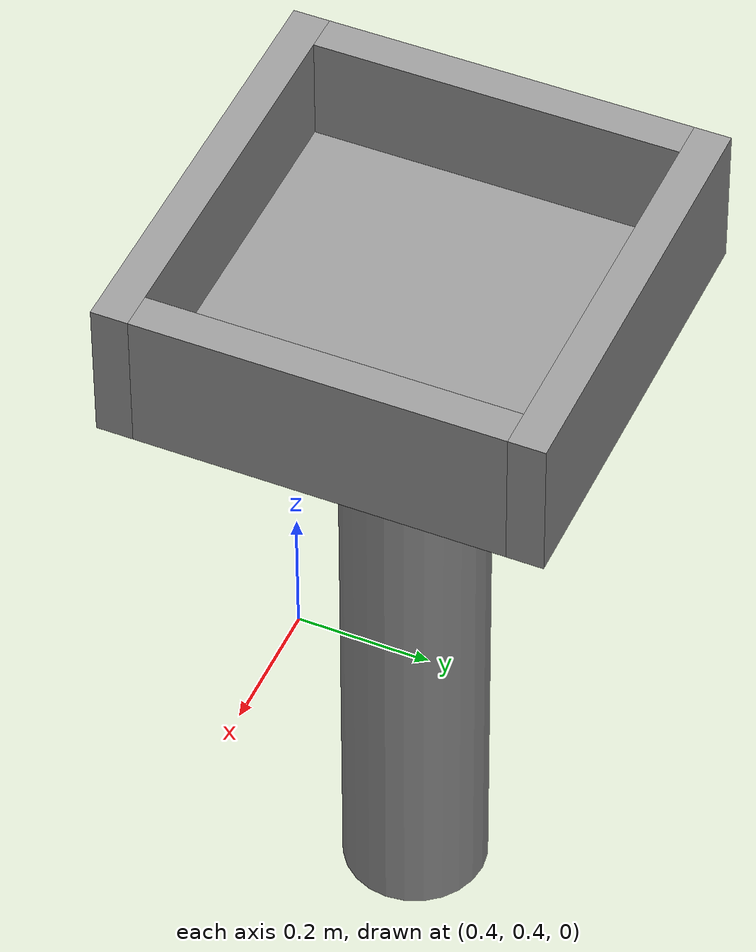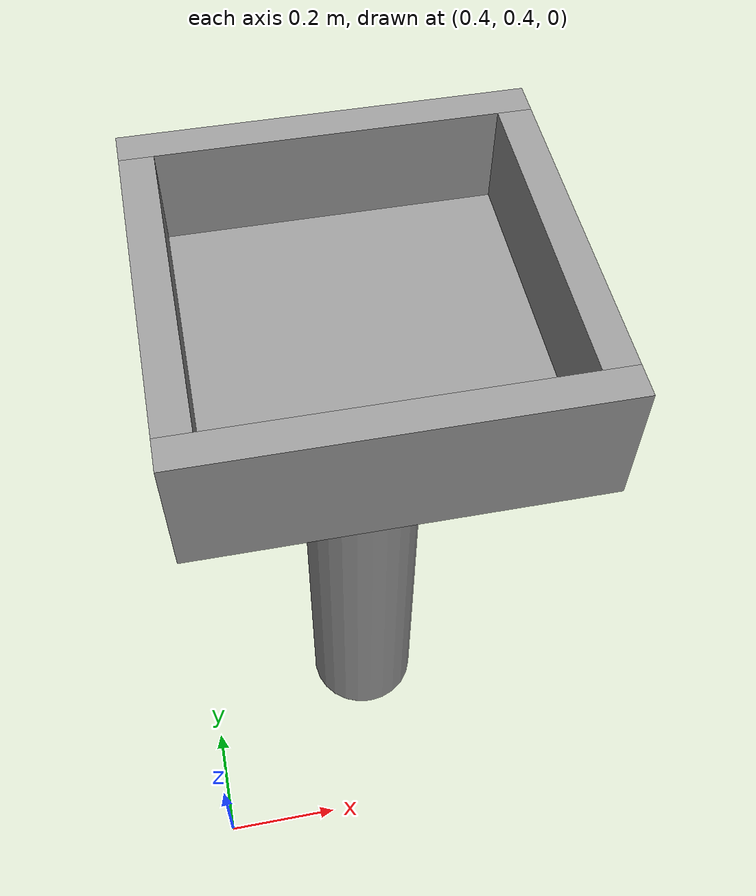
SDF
<?xml version="1.0" ?>
<sdf version="1.4">
<model name="bin">
  <static>true</static>
  <pose>0.72 0.72 1.00 0 0 0</pose>
  <link name="link">
    <collision name="pedistal_collision">
      <pose>0 0 -0.5 0 0 0</pose>
      <geometry>
        <cylinder>
          <radius>0.1</radius>
          <length>1.0</length>
        </cylinder>
      </geometry>
    </collision>
    <visual name="pedistal_visual">
      <pose>0 0 -0.5 0 0 0</pose>
      <geometry>
        <cylinder>
          <radius>0.1</radius>
          <length>1.0</length>
        </cylinder>
      </geometry>
      <material>
        <script>
          <uri>file://media/materials/scripts/gazebo.material</uri>
          <name>Gazebo/Grey</name>
        </script>
      </material>
    </visual>
    <collision name="bottom_collision">
      <geometry>
        <box>
          <size>0.5 0.5 0.05</size>
        </box>
      </geometry>
    </collision>
    <visual name="bottom_visual">
      <geometry>
        <box>
          <size>0.5 0.5 0.05</size>
        </box>
      </geometry>
      <material>
        <script>
          <uri>file://media/materials/scripts/gazebo.material</uri>
          <name>Gazebo/Grey</name>
        </script>
      </material>
    </visual>
    <collision name="side1_collision">
      <pose>0 0.275 0.075 0 0 0</pose>
      <geometry>
        <box>
          <size>0.6 0.05 0.2</size>
        </box>
      </geometry>
    </collision>
    <visual name="side1_visual">
      <pose>0 0.275 0.075 0 0 0</pose>
      <geometry>
        <box>
          <size>0.6 0.05 0.2</size>
        </box>
      </geometry>
      <material>
        <script>
          <uri>file://media/materials/scripts/gazebo.material</uri>
          <name>Gazebo/Grey</name>
        </script>
      </material>
    </visual>
    <collision name="side2_collision">
      <pose>0 -0.275 0.075 0 0 0</pose>
      <geometry>
        <box>
          <size>0.6 0.05 0.2</size>
        </box>
      </geometry>
    </collision>
    <visual name="side2_visual">
      <pose>0 -0.275 0.075 0 0 0</pose>
      <geometry>
        <box>
          <size>0.6 0.05 0.2</size>
        </box>
      </geometry>
      <material>
        <script>
          <uri>file://media/materials/scripts/gazebo.material</uri>
          <name>Gazebo/Grey</name>
        </script>
      </material>
    </visual>
    <collision name="side3_collision">
      <pose>0.275 0 0.075 0 0 0</pose>
      <geometry>
        <box>
          <size>0.05 0.5 0.2</size>
        </box>
      </geometry>
    </collision>
    <visual name="side3_visual">
      <pose>0.275 0 0.075 0 0 0</pose>
      <geometry>
        <box>
          <size>0.05 0.5 0.2</size>
        </box>
      </geometry>
      <material>
        <script>
          <uri>file://media/materials/scripts/gazebo.material</uri>
          <name>Gazebo/Grey</name>
        </script>
      </material>
    </visual>
    <collision name="side4_collision">
      <pose>-0.275 0 0.075 0 0 0</pose>
      <geometry>
        <box>
          <size>0.05 0.5 0.2</size>
        </box>
      </geometry>
    </collision>
    <visual name="side4_visual">
      <pose>-0.275 0 0.075 0 0 0</pose>
      <geometry>
        <box>
          <size>0.05 0.5 0.2</size>
        </box>
      </geometry>
      <material>
        <script>
          <uri>file://media/materials/scripts/gazebo.material</uri>
          <name>Gazebo/Grey</name>
        </script>
      </material>
    </visual>
  </link>
</model>
</sdf>
